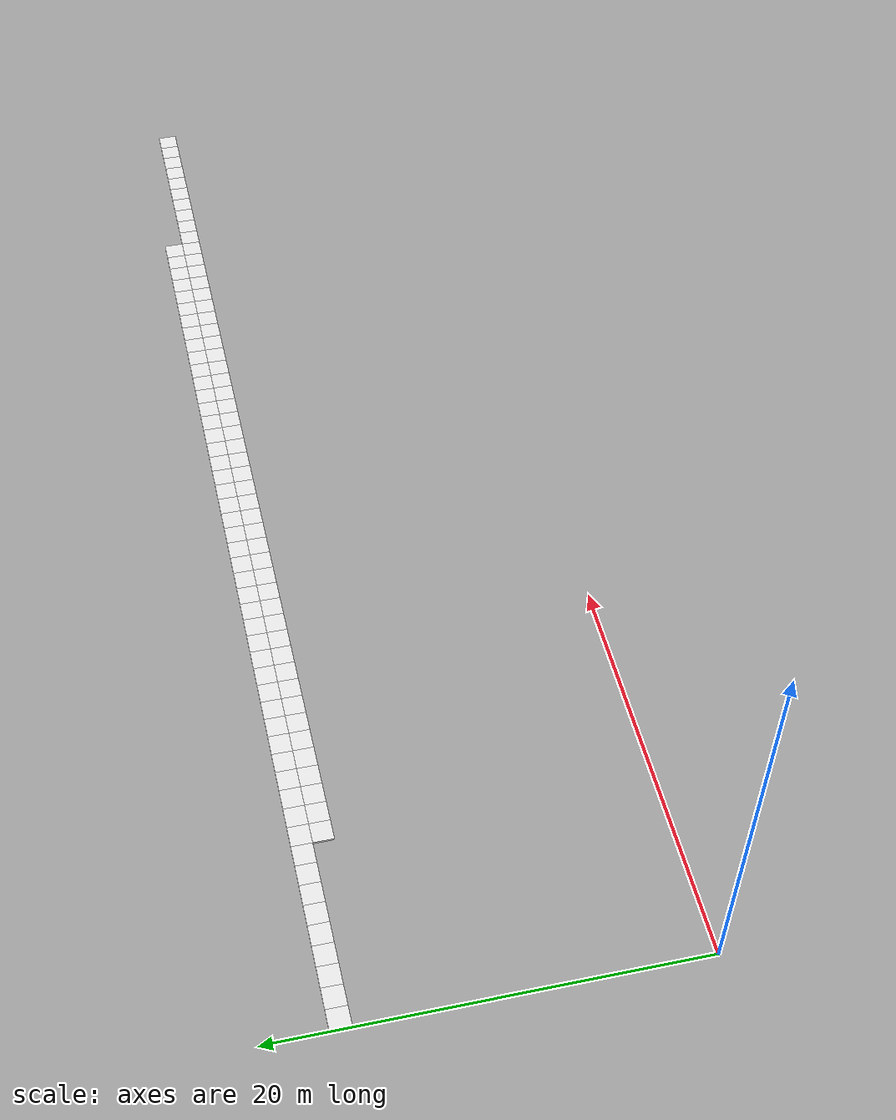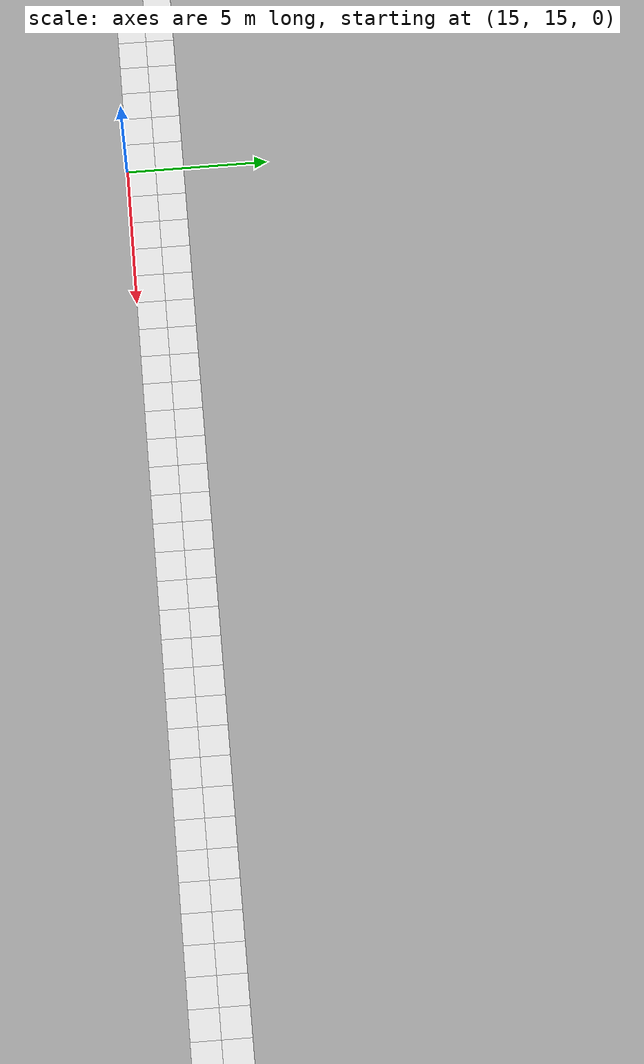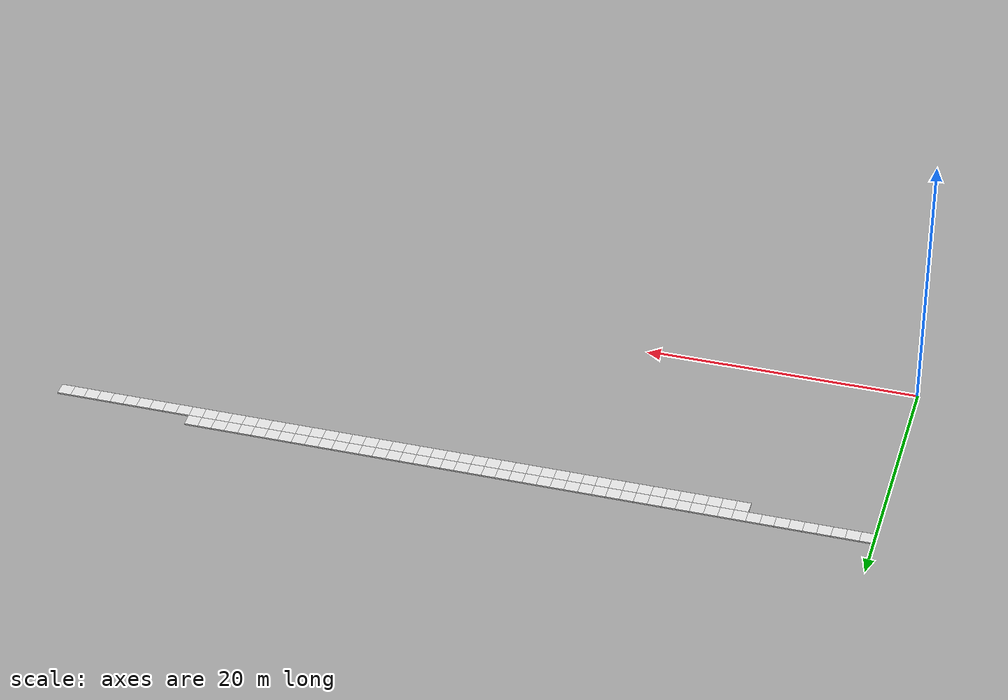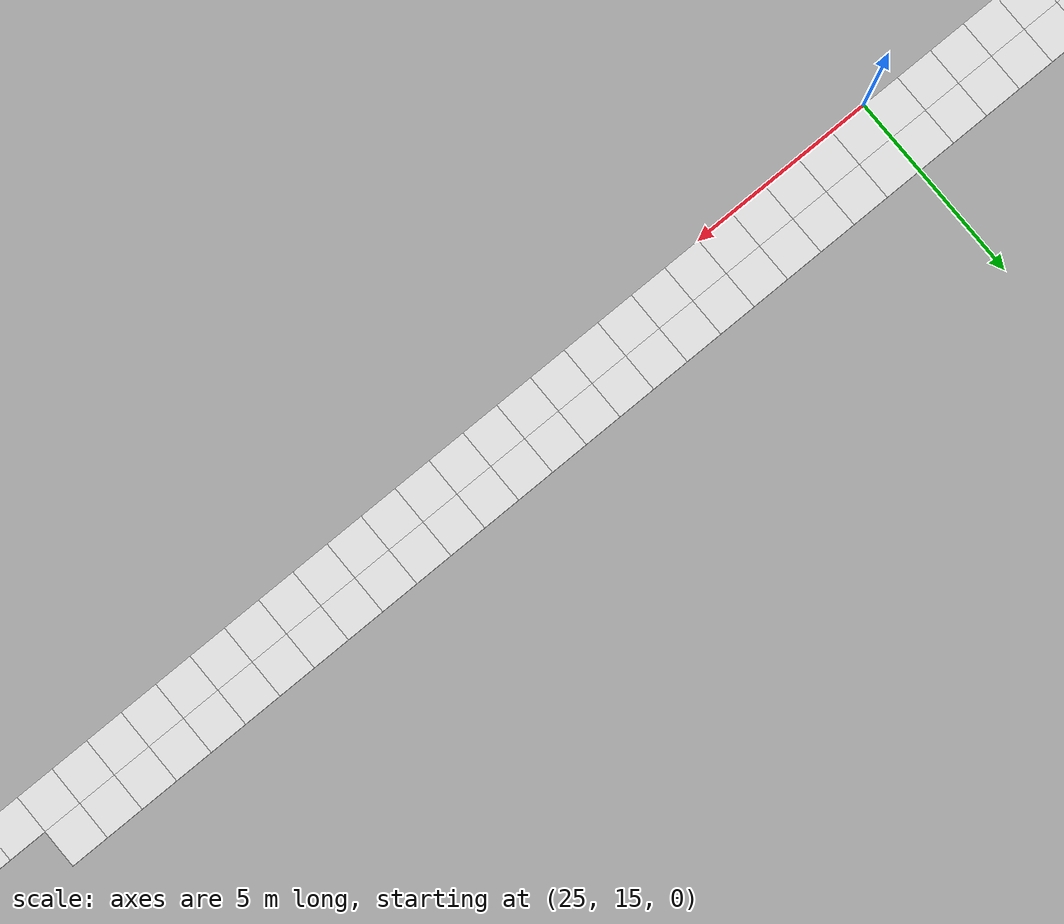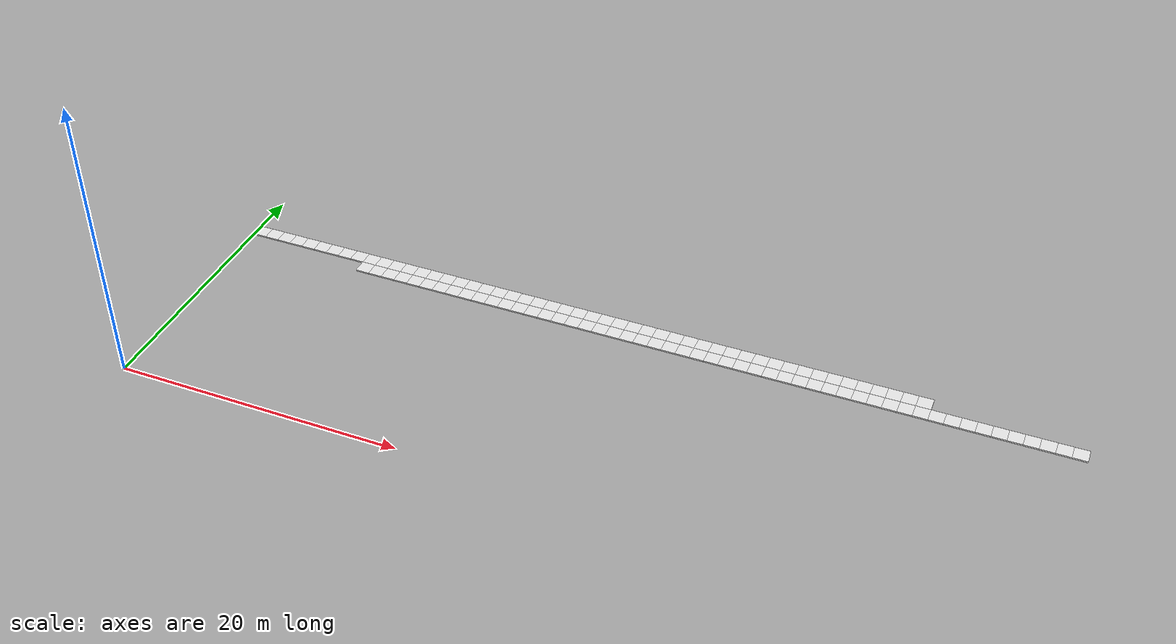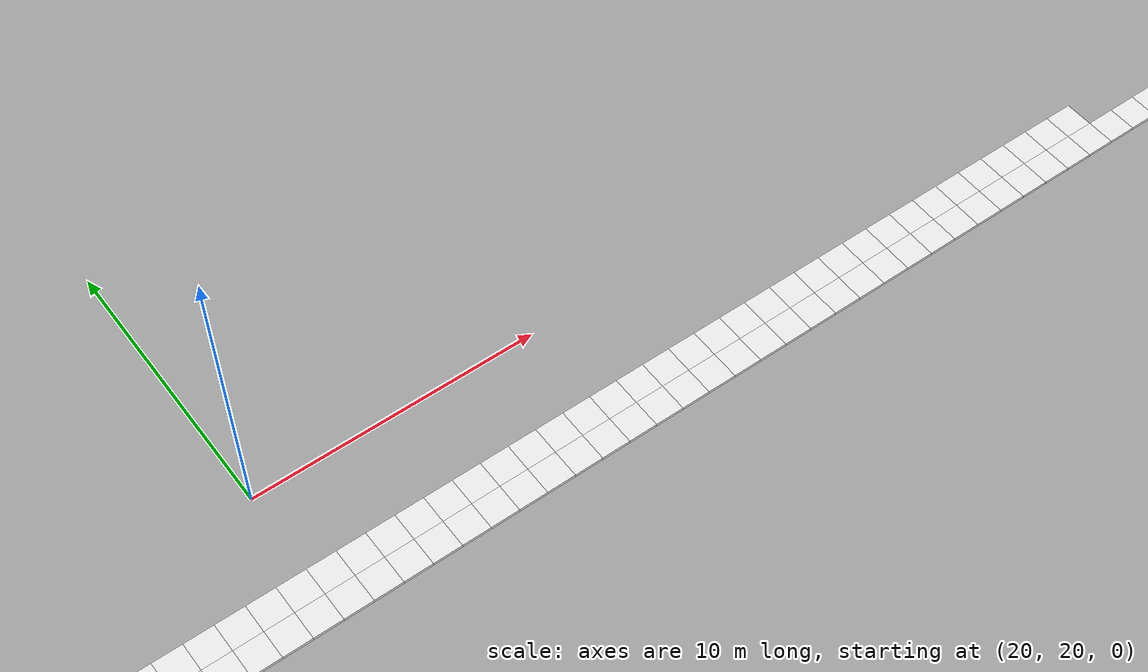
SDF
<sdf version="1.6">
 <world name="grid_world">
  <model name="cell_9_15">
   <static>true</static>
   <link name="link">
    <collision name="collision"><geometry><box><size>1 1 0.1</size></box></geometry></collision>
    <visual name="visual">
     <geometry><box><size>1 1 0.1</size></box></geometry>
     <material>
      <script><uri>file://media/materials/scripts/gazebo.material</uri><name>Gazebo/White</name></script>
     </material>
    </visual>
    <pose>9.5 15.5 0.05 0 0 0</pose>
   </link>
  </model>
  <model name="cell_10_15">
   <static>true</static>
   <link name="link">
    <collision name="collision"><geometry><box><size>1 1 0.1</size></box></geometry></collision>
    <visual name="visual">
     <geometry><box><size>1 1 0.1</size></box></geometry>
     <material>
      <script><uri>file://media/materials/scripts/gazebo.material</uri><name>Gazebo/White</name></script>
     </material>
    </visual>
    <pose>10.5 15.5 0.05 0 0 0</pose>
   </link>
  </model>
  <model name="cell_11_15">
   <static>true</static>
   <link name="link">
    <collision name="collision"><geometry><box><size>1 1 0.1</size></box></geometry></collision>
    <visual name="visual">
     <geometry><box><size>1 1 0.1</size></box></geometry>
     <material>
      <script><uri>file://media/materials/scripts/gazebo.material</uri><name>Gazebo/White</name></script>
     </material>
    </visual>
    <pose>11.5 15.5 0.05 0 0 0</pose>
   </link>
  </model>
  <model name="cell_12_15">
   <static>true</static>
   <link name="link">
    <collision name="collision"><geometry><box><size>1 1 0.1</size></box></geometry></collision>
    <visual name="visual">
     <geometry><box><size>1 1 0.1</size></box></geometry>
     <material>
      <script><uri>file://media/materials/scripts/gazebo.material</uri><name>Gazebo/White</name></script>
     </material>
    </visual>
    <pose>12.5 15.5 0.05 0 0 0</pose>
   </link>
  </model>
  <model name="cell_13_15">
   <static>true</static>
   <link name="link">
    <collision name="collision"><geometry><box><size>1 1 0.1</size></box></geometry></collision>
    <visual name="visual">
     <geometry><box><size>1 1 0.1</size></box></geometry>
     <material>
      <script><uri>file://media/materials/scripts/gazebo.material</uri><name>Gazebo/White</name></script>
     </material>
    </visual>
    <pose>13.5 15.5 0.05 0 0 0</pose>
   </link>
  </model>
  <model name="cell_14_15">
   <static>true</static>
   <link name="link">
    <collision name="collision"><geometry><box><size>1 1 0.1</size></box></geometry></collision>
    <visual name="visual">
     <geometry><box><size>1 1 0.1</size></box></geometry>
     <material>
      <script><uri>file://media/materials/scripts/gazebo.material</uri><name>Gazebo/White</name></script>
     </material>
    </visual>
    <pose>14.5 15.5 0.05 0 0 0</pose>
   </link>
  </model>
  <model name="cell_15_15">
   <static>true</static>
   <link name="link">
    <collision name="collision"><geometry><box><size>1 1 0.1</size></box></geometry></collision>
    <visual name="visual">
     <geometry><box><size>1 1 0.1</size></box></geometry>
     <material>
      <script><uri>file://media/materials/scripts/gazebo.material</uri><name>Gazebo/White</name></script>
     </material>
    </visual>
    <pose>15.5 15.5 0.05 0 0 0</pose>
   </link>
  </model>
  <model name="cell_16_15">
   <static>true</static>
   <link name="link">
    <collision name="collision"><geometry><box><size>1 1 0.1</size></box></geometry></collision>
    <visual name="visual">
     <geometry><box><size>1 1 0.1</size></box></geometry>
     <material>
      <script><uri>file://media/materials/scripts/gazebo.material</uri><name>Gazebo/White</name></script>
     </material>
    </visual>
    <pose>16.5 15.5 0.05 0 0 0</pose>
   </link>
  </model>
  <model name="cell_17_15">
   <static>true</static>
   <link name="link">
    <collision name="collision"><geometry><box><size>1 1 0.1</size></box></geometry></collision>
    <visual name="visual">
     <geometry><box><size>1 1 0.1</size></box></geometry>
     <material>
      <script><uri>file://media/materials/scripts/gazebo.material</uri><name>Gazebo/White</name></script>
     </material>
    </visual>
    <pose>17.5 15.5 0.05 0 0 0</pose>
   </link>
  </model>
  <model name="cell_18_15">
   <static>true</static>
   <link name="link">
    <collision name="collision"><geometry><box><size>1 1 0.1</size></box></geometry></collision>
    <visual name="visual">
     <geometry><box><size>1 1 0.1</size></box></geometry>
     <material>
      <script><uri>file://media/materials/scripts/gazebo.material</uri><name>Gazebo/White</name></script>
     </material>
    </visual>
    <pose>18.5 15.5 0.05 0 0 0</pose>
   </link>
  </model>
  <model name="cell_19_15">
   <static>true</static>
   <link name="link">
    <collision name="collision"><geometry><box><size>1 1 0.1</size></box></geometry></collision>
    <visual name="visual">
     <geometry><box><size>1 1 0.1</size></box></geometry>
     <material>
      <script><uri>file://media/materials/scripts/gazebo.material</uri><name>Gazebo/White</name></script>
     </material>
    </visual>
    <pose>19.5 15.5 0.05 0 0 0</pose>
   </link>
  </model>
  <model name="cell_20_15">
   <static>true</static>
   <link name="link">
    <collision name="collision"><geometry><box><size>1 1 0.1</size></box></geometry></collision>
    <visual name="visual">
     <geometry><box><size>1 1 0.1</size></box></geometry>
     <material>
      <script><uri>file://media/materials/scripts/gazebo.material</uri><name>Gazebo/White</name></script>
     </material>
    </visual>
    <pose>20.5 15.5 0.05 0 0 0</pose>
   </link>
  </model>
  <model name="cell_21_15">
   <static>true</static>
   <link name="link">
    <collision name="collision"><geometry><box><size>1 1 0.1</size></box></geometry></collision>
    <visual name="visual">
     <geometry><box><size>1 1 0.1</size></box></geometry>
     <material>
      <script><uri>file://media/materials/scripts/gazebo.material</uri><name>Gazebo/White</name></script>
     </material>
    </visual>
    <pose>21.5 15.5 0.05 0 0 0</pose>
   </link>
  </model>
  <model name="cell_22_15">
   <static>true</static>
   <link name="link">
    <collision name="collision"><geometry><box><size>1 1 0.1</size></box></geometry></collision>
    <visual name="visual">
     <geometry><box><size>1 1 0.1</size></box></geometry>
     <material>
      <script><uri>file://media/materials/scripts/gazebo.material</uri><name>Gazebo/White</name></script>
     </material>
    </visual>
    <pose>22.5 15.5 0.05 0 0 0</pose>
   </link>
  </model>
  <model name="cell_23_15">
   <static>true</static>
   <link name="link">
    <collision name="collision"><geometry><box><size>1 1 0.1</size></box></geometry></collision>
    <visual name="visual">
     <geometry><box><size>1 1 0.1</size></box></geometry>
     <material>
      <script><uri>file://media/materials/scripts/gazebo.material</uri><name>Gazebo/White</name></script>
     </material>
    </visual>
    <pose>23.5 15.5 0.05 0 0 0</pose>
   </link>
  </model>
  <model name="cell_24_15">
   <static>true</static>
   <link name="link">
    <collision name="collision"><geometry><box><size>1 1 0.1</size></box></geometry></collision>
    <visual name="visual">
     <geometry><box><size>1 1 0.1</size></box></geometry>
     <material>
      <script><uri>file://media/materials/scripts/gazebo.material</uri><name>Gazebo/White</name></script>
     </material>
    </visual>
    <pose>24.5 15.5 0.05 0 0 0</pose>
   </link>
  </model>
  <model name="cell_25_15">
   <static>true</static>
   <link name="link">
    <collision name="collision"><geometry><box><size>1 1 0.1</size></box></geometry></collision>
    <visual name="visual">
     <geometry><box><size>1 1 0.1</size></box></geometry>
     <material>
      <script><uri>file://media/materials/scripts/gazebo.material</uri><name>Gazebo/White</name></script>
     </material>
    </visual>
    <pose>25.5 15.5 0.05 0 0 0</pose>
   </link>
  </model>
  <model name="cell_26_15">
   <static>true</static>
   <link name="link">
    <collision name="collision"><geometry><box><size>1 1 0.1</size></box></geometry></collision>
    <visual name="visual">
     <geometry><box><size>1 1 0.1</size></box></geometry>
     <material>
      <script><uri>file://media/materials/scripts/gazebo.material</uri><name>Gazebo/White</name></script>
     </material>
    </visual>
    <pose>26.5 15.5 0.05 0 0 0</pose>
   </link>
  </model>
  <model name="cell_27_15">
   <static>true</static>
   <link name="link">
    <collision name="collision"><geometry><box><size>1 1 0.1</size></box></geometry></collision>
    <visual name="visual">
     <geometry><box><size>1 1 0.1</size></box></geometry>
     <material>
      <script><uri>file://media/materials/scripts/gazebo.material</uri><name>Gazebo/White</name></script>
     </material>
    </visual>
    <pose>27.5 15.5 0.05 0 0 0</pose>
   </link>
  </model>
  <model name="cell_28_15">
   <static>true</static>
   <link name="link">
    <collision name="collision"><geometry><box><size>1 1 0.1</size></box></geometry></collision>
    <visual name="visual">
     <geometry><box><size>1 1 0.1</size></box></geometry>
     <material>
      <script><uri>file://media/materials/scripts/gazebo.material</uri><name>Gazebo/White</name></script>
     </material>
    </visual>
    <pose>28.5 15.5 0.05 0 0 0</pose>
   </link>
  </model>
  <model name="cell_29_15">
   <static>true</static>
   <link name="link">
    <collision name="collision"><geometry><box><size>1 1 0.1</size></box></geometry></collision>
    <visual name="visual">
     <geometry><box><size>1 1 0.1</size></box></geometry>
     <material>
      <script><uri>file://media/materials/scripts/gazebo.material</uri><name>Gazebo/White</name></script>
     </material>
    </visual>
    <pose>29.5 15.5 0.05 0 0 0</pose>
   </link>
  </model>
  <model name="cell_30_15">
   <static>true</static>
   <link name="link">
    <collision name="collision"><geometry><box><size>1 1 0.1</size></box></geometry></collision>
    <visual name="visual">
     <geometry><box><size>1 1 0.1</size></box></geometry>
     <material>
      <script><uri>file://media/materials/scripts/gazebo.material</uri><name>Gazebo/White</name></script>
     </material>
    </visual>
    <pose>30.5 15.5 0.05 0 0 0</pose>
   </link>
  </model>
  <model name="cell_31_15">
   <static>true</static>
   <link name="link">
    <collision name="collision"><geometry><box><size>1 1 0.1</size></box></geometry></collision>
    <visual name="visual">
     <geometry><box><size>1 1 0.1</size></box></geometry>
     <material>
      <script><uri>file://media/materials/scripts/gazebo.material</uri><name>Gazebo/White</name></script>
     </material>
    </visual>
    <pose>31.5 15.5 0.05 0 0 0</pose>
   </link>
  </model>
  <model name="cell_32_15">
   <static>true</static>
   <link name="link">
    <collision name="collision"><geometry><box><size>1 1 0.1</size></box></geometry></collision>
    <visual name="visual">
     <geometry><box><size>1 1 0.1</size></box></geometry>
     <material>
      <script><uri>file://media/materials/scripts/gazebo.material</uri><name>Gazebo/White</name></script>
     </material>
    </visual>
    <pose>32.5 15.5 0.05 0 0 0</pose>
   </link>
  </model>
  <model name="cell_33_15">
   <static>true</static>
   <link name="link">
    <collision name="collision"><geometry><box><size>1 1 0.1</size></box></geometry></collision>
    <visual name="visual">
     <geometry><box><size>1 1 0.1</size></box></geometry>
     <material>
      <script><uri>file://media/materials/scripts/gazebo.material</uri><name>Gazebo/White</name></script>
     </material>
    </visual>
    <pose>33.5 15.5 0.05 0 0 0</pose>
   </link>
  </model>
  <model name="cell_34_15">
   <static>true</static>
   <link name="link">
    <collision name="collision"><geometry><box><size>1 1 0.1</size></box></geometry></collision>
    <visual name="visual">
     <geometry><box><size>1 1 0.1</size></box></geometry>
     <material>
      <script><uri>file://media/materials/scripts/gazebo.material</uri><name>Gazebo/White</name></script>
     </material>
    </visual>
    <pose>34.5 15.5 0.05 0 0 0</pose>
   </link>
  </model>
  <model name="cell_35_15">
   <static>true</static>
   <link name="link">
    <collision name="collision"><geometry><box><size>1 1 0.1</size></box></geometry></collision>
    <visual name="visual">
     <geometry><box><size>1 1 0.1</size></box></geometry>
     <material>
      <script><uri>file://media/materials/scripts/gazebo.material</uri><name>Gazebo/White</name></script>
     </material>
    </visual>
    <pose>35.5 15.5 0.05 0 0 0</pose>
   </link>
  </model>
  <model name="cell_36_15">
   <static>true</static>
   <link name="link">
    <collision name="collision"><geometry><box><size>1 1 0.1</size></box></geometry></collision>
    <visual name="visual">
     <geometry><box><size>1 1 0.1</size></box></geometry>
     <material>
      <script><uri>file://media/materials/scripts/gazebo.material</uri><name>Gazebo/White</name></script>
     </material>
    </visual>
    <pose>36.5 15.5 0.05 0 0 0</pose>
   </link>
  </model>
  <model name="cell_37_15">
   <static>true</static>
   <link name="link">
    <collision name="collision"><geometry><box><size>1 1 0.1</size></box></geometry></collision>
    <visual name="visual">
     <geometry><box><size>1 1 0.1</size></box></geometry>
     <material>
      <script><uri>file://media/materials/scripts/gazebo.material</uri><name>Gazebo/White</name></script>
     </material>
    </visual>
    <pose>37.5 15.5 0.05 0 0 0</pose>
   </link>
  </model>
  <model name="cell_38_15">
   <static>true</static>
   <link name="link">
    <collision name="collision"><geometry><box><size>1 1 0.1</size></box></geometry></collision>
    <visual name="visual">
     <geometry><box><size>1 1 0.1</size></box></geometry>
     <material>
      <script><uri>file://media/materials/scripts/gazebo.material</uri><name>Gazebo/White</name></script>
     </material>
    </visual>
    <pose>38.5 15.5 0.05 0 0 0</pose>
   </link>
  </model>
  <model name="cell_39_15">
   <static>true</static>
   <link name="link">
    <collision name="collision"><geometry><box><size>1 1 0.1</size></box></geometry></collision>
    <visual name="visual">
     <geometry><box><size>1 1 0.1</size></box></geometry>
     <material>
      <script><uri>file://media/materials/scripts/gazebo.material</uri><name>Gazebo/White</name></script>
     </material>
    </visual>
    <pose>39.5 15.5 0.05 0 0 0</pose>
   </link>
  </model>
  <model name="cell_40_15">
   <static>true</static>
   <link name="link">
    <collision name="collision"><geometry><box><size>1 1 0.1</size></box></geometry></collision>
    <visual name="visual">
     <geometry><box><size>1 1 0.1</size></box></geometry>
     <material>
      <script><uri>file://media/materials/scripts/gazebo.material</uri><name>Gazebo/White</name></script>
     </material>
    </visual>
    <pose>40.5 15.5 0.05 0 0 0</pose>
   </link>
  </model>
  <model name="cell_41_15">
   <static>true</static>
   <link name="link">
    <collision name="collision"><geometry><box><size>1 1 0.1</size></box></geometry></collision>
    <visual name="visual">
     <geometry><box><size>1 1 0.1</size></box></geometry>
     <material>
      <script><uri>file://media/materials/scripts/gazebo.material</uri><name>Gazebo/White</name></script>
     </material>
    </visual>
    <pose>41.5 15.5 0.05 0 0 0</pose>
   </link>
  </model>
  <model name="cell_42_15">
   <static>true</static>
   <link name="link">
    <collision name="collision"><geometry><box><size>1 1 0.1</size></box></geometry></collision>
    <visual name="visual">
     <geometry><box><size>1 1 0.1</size></box></geometry>
     <material>
      <script><uri>file://media/materials/scripts/gazebo.material</uri><name>Gazebo/White</name></script>
     </material>
    </visual>
    <pose>42.5 15.5 0.05 0 0 0</pose>
   </link>
  </model>
  <model name="cell_43_15">
   <static>true</static>
   <link name="link">
    <collision name="collision"><geometry><box><size>1 1 0.1</size></box></geometry></collision>
    <visual name="visual">
     <geometry><box><size>1 1 0.1</size></box></geometry>
     <material>
      <script><uri>file://media/materials/scripts/gazebo.material</uri><name>Gazebo/White</name></script>
     </material>
    </visual>
    <pose>43.5 15.5 0.05 0 0 0</pose>
   </link>
  </model>
  <model name="cell_44_15">
   <static>true</static>
   <link name="link">
    <collision name="collision"><geometry><box><size>1 1 0.1</size></box></geometry></collision>
    <visual name="visual">
     <geometry><box><size>1 1 0.1</size></box></geometry>
     <material>
      <script><uri>file://media/materials/scripts/gazebo.material</uri><name>Gazebo/White</name></script>
     </material>
    </visual>
    <pose>44.5 15.5 0.05 0 0 0</pose>
   </link>
  </model>
  <model name="cell_45_15">
   <static>true</static>
   <link name="link">
    <collision name="collision"><geometry><box><size>1 1 0.1</size></box></geometry></collision>
    <visual name="visual">
     <geometry><box><size>1 1 0.1</size></box></geometry>
     <material>
      <script><uri>file://media/materials/scripts/gazebo.material</uri><name>Gazebo/White</name></script>
     </material>
    </visual>
    <pose>45.5 15.5 0.05 0 0 0</pose>
   </link>
  </model>
  <model name="cell_46_15">
   <static>true</static>
   <link name="link">
    <collision name="collision"><geometry><box><size>1 1 0.1</size></box></geometry></collision>
    <visual name="visual">
     <geometry><box><size>1 1 0.1</size></box></geometry>
     <material>
      <script><uri>file://media/materials/scripts/gazebo.material</uri><name>Gazebo/White</name></script>
     </material>
    </visual>
    <pose>46.5 15.5 0.05 0 0 0</pose>
   </link>
  </model>
  <model name="cell_47_15">
   <static>true</static>
   <link name="link">
    <collision name="collision"><geometry><box><size>1 1 0.1</size></box></geometry></collision>
    <visual name="visual">
     <geometry><box><size>1 1 0.1</size></box></geometry>
     <material>
      <script><uri>file://media/materials/scripts/gazebo.material</uri><name>Gazebo/White</name></script>
     </material>
    </visual>
    <pose>47.5 15.5 0.05 0 0 0</pose>
   </link>
  </model>
  <model name="cell_48_15">
   <static>true</static>
   <link name="link">
    <collision name="collision"><geometry><box><size>1 1 0.1</size></box></geometry></collision>
    <visual name="visual">
     <geometry><box><size>1 1 0.1</size></box></geometry>
     <material>
      <script><uri>file://media/materials/scripts/gazebo.material</uri><name>Gazebo/White</name></script>
     </material>
    </visual>
    <pose>48.5 15.5 0.05 0 0 0</pose>
   </link>
  </model>
  <model name="cell_49_15">
   <static>true</static>
   <link name="link">
    <collision name="collision"><geometry><box><size>1 1 0.1</size></box></geometry></collision>
    <visual name="visual">
     <geometry><box><size>1 1 0.1</size></box></geometry>
     <material>
      <script><uri>file://media/materials/scripts/gazebo.material</uri><name>Gazebo/White</name></script>
     </material>
    </visual>
    <pose>49.5 15.5 0.05 0 0 0</pose>
   </link>
  </model>
  <model name="cell_50_15">
   <static>true</static>
   <link name="link">
    <collision name="collision"><geometry><box><size>1 1 0.1</size></box></geometry></collision>
    <visual name="visual">
     <geometry><box><size>1 1 0.1</size></box></geometry>
     <material>
      <script><uri>file://media/materials/scripts/gazebo.material</uri><name>Gazebo/White</name></script>
     </material>
    </visual>
    <pose>50.5 15.5 0.05 0 0 0</pose>
   </link>
  </model>
  <model name="cell_51_15">
   <static>true</static>
   <link name="link">
    <collision name="collision"><geometry><box><size>1 1 0.1</size></box></geometry></collision>
    <visual name="visual">
     <geometry><box><size>1 1 0.1</size></box></geometry>
     <material>
      <script><uri>file://media/materials/scripts/gazebo.material</uri><name>Gazebo/White</name></script>
     </material>
    </visual>
    <pose>51.5 15.5 0.05 0 0 0</pose>
   </link>
  </model>
  <model name="cell_52_15">
   <static>true</static>
   <link name="link">
    <collision name="collision"><geometry><box><size>1 1 0.1</size></box></geometry></collision>
    <visual name="visual">
     <geometry><box><size>1 1 0.1</size></box></geometry>
     <material>
      <script><uri>file://media/materials/scripts/gazebo.material</uri><name>Gazebo/White</name></script>
     </material>
    </visual>
    <pose>52.5 15.5 0.05 0 0 0</pose>
   </link>
  </model>
  <model name="cell_53_15">
   <static>true</static>
   <link name="link">
    <collision name="collision"><geometry><box><size>1 1 0.1</size></box></geometry></collision>
    <visual name="visual">
     <geometry><box><size>1 1 0.1</size></box></geometry>
     <material>
      <script><uri>file://media/materials/scripts/gazebo.material</uri><name>Gazebo/White</name></script>
     </material>
    </visual>
    <pose>53.5 15.5 0.05 0 0 0</pose>
   </link>
  </model>
  <model name="cell_54_15">
   <static>true</static>
   <link name="link">
    <collision name="collision"><geometry><box><size>1 1 0.1</size></box></geometry></collision>
    <visual name="visual">
     <geometry><box><size>1 1 0.1</size></box></geometry>
     <material>
      <script><uri>file://media/materials/scripts/gazebo.material</uri><name>Gazebo/White</name></script>
     </material>
    </visual>
    <pose>54.5 15.5 0.05 0 0 0</pose>
   </link>
  </model>
  <model name="cell_55_15">
   <static>true</static>
   <link name="link">
    <collision name="collision"><geometry><box><size>1 1 0.1</size></box></geometry></collision>
    <visual name="visual">
     <geometry><box><size>1 1 0.1</size></box></geometry>
     <material>
      <script><uri>file://media/materials/scripts/gazebo.material</uri><name>Gazebo/White</name></script>
     </material>
    </visual>
    <pose>55.5 15.5 0.05 0 0 0</pose>
   </link>
  </model>
  <model name="cell_56_15">
   <static>true</static>
   <link name="link">
    <collision name="collision"><geometry><box><size>1 1 0.1</size></box></geometry></collision>
    <visual name="visual">
     <geometry><box><size>1 1 0.1</size></box></geometry>
     <material>
      <script><uri>file://media/materials/scripts/gazebo.material</uri><name>Gazebo/White</name></script>
     </material>
    </visual>
    <pose>56.5 15.5 0.05 0 0 0</pose>
   </link>
  </model>
  <model name="cell_57_15">
   <static>true</static>
   <link name="link">
    <collision name="collision"><geometry><box><size>1 1 0.1</size></box></geometry></collision>
    <visual name="visual">
     <geometry><box><size>1 1 0.1</size></box></geometry>
     <material>
      <script><uri>file://media/materials/scripts/gazebo.material</uri><name>Gazebo/White</name></script>
     </material>
    </visual>
    <pose>57.5 15.5 0.05 0 0 0</pose>
   </link>
  </model>
  <model name="cell_58_15">
   <static>true</static>
   <link name="link">
    <collision name="collision"><geometry><box><size>1 1 0.1</size></box></geometry></collision>
    <visual name="visual">
     <geometry><box><size>1 1 0.1</size></box></geometry>
     <material>
      <script><uri>file://media/materials/scripts/gazebo.material</uri><name>Gazebo/White</name></script>
     </material>
    </visual>
    <pose>58.5 15.5 0.05 0 0 0</pose>
   </link>
  </model>
  <model name="cell_59_15">
   <static>true</static>
   <link name="link">
    <collision name="collision"><geometry><box><size>1 1 0.1</size></box></geometry></collision>
    <visual name="visual">
     <geometry><box><size>1 1 0.1</size></box></geometry>
     <material>
      <script><uri>file://media/materials/scripts/gazebo.material</uri><name>Gazebo/White</name></script>
     </material>
    </visual>
    <pose>59.5 15.5 0.05 0 0 0</pose>
   </link>
  </model>
  <model name="cell_0_16">
   <static>true</static>
   <link name="link">
    <collision name="collision"><geometry><box><size>1 1 0.1</size></box></geometry></collision>
    <visual name="visual">
     <geometry><box><size>1 1 0.1</size></box></geometry>
     <material>
      <script><uri>file://media/materials/scripts/gazebo.material</uri><name>Gazebo/White</name></script>
     </material>
    </visual>
    <pose>0.5 16.5 0.05 0 0 0</pose>
   </link>
  </model>
  <model name="cell_1_16">
   <static>true</static>
   <link name="link">
    <collision name="collision"><geometry><box><size>1 1 0.1</size></box></geometry></collision>
    <visual name="visual">
     <geometry><box><size>1 1 0.1</size></box></geometry>
     <material>
      <script><uri>file://media/materials/scripts/gazebo.material</uri><name>Gazebo/White</name></script>
     </material>
    </visual>
    <pose>1.5 16.5 0.05 0 0 0</pose>
   </link>
  </model>
  <model name="cell_2_16">
   <static>true</static>
   <link name="link">
    <collision name="collision"><geometry><box><size>1 1 0.1</size></box></geometry></collision>
    <visual name="visual">
     <geometry><box><size>1 1 0.1</size></box></geometry>
     <material>
      <script><uri>file://media/materials/scripts/gazebo.material</uri><name>Gazebo/White</name></script>
     </material>
    </visual>
    <pose>2.5 16.5 0.05 0 0 0</pose>
   </link>
  </model>
  <model name="cell_3_16">
   <static>true</static>
   <link name="link">
    <collision name="collision"><geometry><box><size>1 1 0.1</size></box></geometry></collision>
    <visual name="visual">
     <geometry><box><size>1 1 0.1</size></box></geometry>
     <material>
      <script><uri>file://media/materials/scripts/gazebo.material</uri><name>Gazebo/White</name></script>
     </material>
    </visual>
    <pose>3.5 16.5 0.05 0 0 0</pose>
   </link>
  </model>
  <model name="cell_4_16">
   <static>true</static>
   <link name="link">
    <collision name="collision"><geometry><box><size>1 1 0.1</size></box></geometry></collision>
    <visual name="visual">
     <geometry><box><size>1 1 0.1</size></box></geometry>
     <material>
      <script><uri>file://media/materials/scripts/gazebo.material</uri><name>Gazebo/White</name></script>
     </material>
    </visual>
    <pose>4.5 16.5 0.05 0 0 0</pose>
   </link>
  </model>
  <model name="cell_5_16">
   <static>true</static>
   <link name="link">
    <collision name="collision"><geometry><box><size>1 1 0.1</size></box></geometry></collision>
    <visual name="visual">
     <geometry><box><size>1 1 0.1</size></box></geometry>
     <material>
      <script><uri>file://media/materials/scripts/gazebo.material</uri><name>Gazebo/White</name></script>
     </material>
    </visual>
    <pose>5.5 16.5 0.05 0 0 0</pose>
   </link>
  </model>
  <model name="cell_6_16">
   <static>true</static>
   <link name="link">
    <collision name="collision"><geometry><box><size>1 1 0.1</size></box></geometry></collision>
    <visual name="visual">
     <geometry><box><size>1 1 0.1</size></box></geometry>
     <material>
      <script><uri>file://media/materials/scripts/gazebo.material</uri><name>Gazebo/White</name></script>
     </material>
    </visual>
    <pose>6.5 16.5 0.05 0 0 0</pose>
   </link>
  </model>
  <model name="cell_7_16">
   <static>true</static>
   <link name="link">
    <collision name="collision"><geometry><box><size>1 1 0.1</size></box></geometry></collision>
    <visual name="visual">
     <geometry><box><size>1 1 0.1</size></box></geometry>
     <material>
      <script><uri>file://media/materials/scripts/gazebo.material</uri><name>Gazebo/White</name></script>
     </material>
    </visual>
    <pose>7.5 16.5 0.05 0 0 0</pose>
   </link>
  </model>
  <model name="cell_8_16">
   <static>true</static>
   <link name="link">
    <collision name="collision"><geometry><box><size>1 1 0.1</size></box></geometry></collision>
    <visual name="visual">
     <geometry><box><size>1 1 0.1</size></box></geometry>
     <material>
      <script><uri>file://media/materials/scripts/gazebo.material</uri><name>Gazebo/White</name></script>
     </material>
    </visual>
    <pose>8.5 16.5 0.05 0 0 0</pose>
   </link>
  </model>
  <model name="cell_9_16">
   <static>true</static>
   <link name="link">
    <collision name="collision"><geometry><box><size>1 1 0.1</size></box></geometry></collision>
    <visual name="visual">
     <geometry><box><size>1 1 0.1</size></box></geometry>
     <material>
      <script><uri>file://media/materials/scripts/gazebo.material</uri><name>Gazebo/White</name></script>
     </material>
    </visual>
    <pose>9.5 16.5 0.05 0 0 0</pose>
   </link>
  </model>
  <model name="cell_10_16">
   <static>true</static>
   <link name="link">
    <collision name="collision"><geometry><box><size>1 1 0.1</size></box></geometry></collision>
    <visual name="visual">
     <geometry><box><size>1 1 0.1</size></box></geometry>
     <material>
      <script><uri>file://media/materials/scripts/gazebo.material</uri><name>Gazebo/White</name></script>
     </material>
    </visual>
    <pose>10.5 16.5 0.05 0 0 0</pose>
   </link>
  </model>
  <model name="cell_11_16">
   <static>true</static>
   <link name="link">
    <collision name="collision"><geometry><box><size>1 1 0.1</size></box></geometry></collision>
    <visual name="visual">
     <geometry><box><size>1 1 0.1</size></box></geometry>
     <material>
      <script><uri>file://media/materials/scripts/gazebo.material</uri><name>Gazebo/White</name></script>
     </material>
    </visual>
    <pose>11.5 16.5 0.05 0 0 0</pose>
   </link>
  </model>
  <model name="cell_12_16">
   <static>true</static>
   <link name="link">
    <collision name="collision"><geometry><box><size>1 1 0.1</size></box></geometry></collision>
    <visual name="visual">
     <geometry><box><size>1 1 0.1</size></box></geometry>
     <material>
      <script><uri>file://media/materials/scripts/gazebo.material</uri><name>Gazebo/White</name></script>
     </material>
    </visual>
    <pose>12.5 16.5 0.05 0 0 0</pose>
   </link>
  </model>
  <model name="cell_13_16">
   <static>true</static>
   <link name="link">
    <collision name="collision"><geometry><box><size>1 1 0.1</size></box></geometry></collision>
    <visual name="visual">
     <geometry><box><size>1 1 0.1</size></box></geometry>
     <material>
      <script><uri>file://media/materials/scripts/gazebo.material</uri><name>Gazebo/White</name></script>
     </material>
    </visual>
    <pose>13.5 16.5 0.05 0 0 0</pose>
   </link>
  </model>
  <model name="cell_14_16">
   <static>true</static>
   <link name="link">
    <collision name="collision"><geometry><box><size>1 1 0.1</size></box></geometry></collision>
    <visual name="visual">
     <geometry><box><size>1 1 0.1</size></box></geometry>
     <material>
      <script><uri>file://media/materials/scripts/gazebo.material</uri><name>Gazebo/White</name></script>
     </material>
    </visual>
    <pose>14.5 16.5 0.05 0 0 0</pose>
   </link>
  </model>
  <model name="cell_15_16">
   <static>true</static>
   <link name="link">
    <collision name="collision"><geometry><box><size>1 1 0.1</size></box></geometry></collision>
    <visual name="visual">
     <geometry><box><size>1 1 0.1</size></box></geometry>
     <material>
      <script><uri>file://media/materials/scripts/gazebo.material</uri><name>Gazebo/White</name></script>
     </material>
    </visual>
    <pose>15.5 16.5 0.05 0 0 0</pose>
   </link>
  </model>
  <model name="cell_16_16">
   <static>true</static>
   <link name="link">
    <collision name="collision"><geometry><box><size>1 1 0.1</size></box></geometry></collision>
    <visual name="visual">
     <geometry><box><size>1 1 0.1</size></box></geometry>
     <material>
      <script><uri>file://media/materials/scripts/gazebo.material</uri><name>Gazebo/White</name></script>
     </material>
    </visual>
    <pose>16.5 16.5 0.05 0 0 0</pose>
   </link>
  </model>
  <model name="cell_17_16">
   <static>true</static>
   <link name="link">
    <collision name="collision"><geometry><box><size>1 1 0.1</size></box></geometry></collision>
    <visual name="visual">
     <geometry><box><size>1 1 0.1</size></box></geometry>
     <material>
      <script><uri>file://media/materials/scripts/gazebo.material</uri><name>Gazebo/White</name></script>
     </material>
    </visual>
    <pose>17.5 16.5 0.05 0 0 0</pose>
   </link>
  </model>
  <model name="cell_18_16">
   <static>true</static>
   <link name="link">
    <collision name="collision"><geometry><box><size>1 1 0.1</size></box></geometry></collision>
    <visual name="visual">
     <geometry><box><size>1 1 0.1</size></box></geometry>
     <material>
      <script><uri>file://media/materials/scripts/gazebo.material</uri><name>Gazebo/White</name></script>
     </material>
    </visual>
    <pose>18.5 16.5 0.05 0 0 0</pose>
   </link>
  </model>
  <model name="cell_19_16">
   <static>true</static>
   <link name="link">
    <collision name="collision"><geometry><box><size>1 1 0.1</size></box></geometry></collision>
    <visual name="visual">
     <geometry><box><size>1 1 0.1</size></box></geometry>
     <material>
      <script><uri>file://media/materials/scripts/gazebo.material</uri><name>Gazebo/White</name></script>
     </material>
    </visual>
    <pose>19.5 16.5 0.05 0 0 0</pose>
   </link>
  </model>
  <model name="cell_20_16">
   <static>true</static>
   <link name="link">
    <collision name="collision"><geometry><box><size>1 1 0.1</size></box></geometry></collision>
    <visual name="visual">
     <geometry><box><size>1 1 0.1</size></box></geometry>
     <material>
      <script><uri>file://media/materials/scripts/gazebo.material</uri><name>Gazebo/White</name></script>
     </material>
    </visual>
    <pose>20.5 16.5 0.05 0 0 0</pose>
   </link>
  </model>
  <model name="cell_21_16">
   <static>true</static>
   <link name="link">
    <collision name="collision"><geometry><box><size>1 1 0.1</size></box></geometry></collision>
    <visual name="visual">
     <geometry><box><size>1 1 0.1</size></box></geometry>
     <material>
      <script><uri>file://media/materials/scripts/gazebo.material</uri><name>Gazebo/White</name></script>
     </material>
    </visual>
    <pose>21.5 16.5 0.05 0 0 0</pose>
   </link>
  </model>
  <model name="cell_22_16">
   <static>true</static>
   <link name="link">
    <collision name="collision"><geometry><box><size>1 1 0.1</size></box></geometry></collision>
    <visual name="visual">
     <geometry><box><size>1 1 0.1</size></box></geometry>
     <material>
      <script><uri>file://media/materials/scripts/gazebo.material</uri><name>Gazebo/White</name></script>
     </material>
    </visual>
    <pose>22.5 16.5 0.05 0 0 0</pose>
   </link>
  </model>
  <model name="cell_23_16">
   <static>true</static>
   <link name="link">
    <collision name="collision"><geometry><box><size>1 1 0.1</size></box></geometry></collision>
    <visual name="visual">
     <geometry><box><size>1 1 0.1</size></box></geometry>
     <material>
      <script><uri>file://media/materials/scripts/gazebo.material</uri><name>Gazebo/White</name></script>
     </material>
    </visual>
    <pose>23.5 16.5 0.05 0 0 0</pose>
   </link>
  </model>
  <model name="cell_24_16">
   <static>true</static>
   <link name="link">
    <collision name="collision"><geometry><box><size>1 1 0.1</size></box></geometry></collision>
    <visual name="visual">
     <geometry><box><size>1 1 0.1</size></box></geometry>
     <material>
      <script><uri>file://media/materials/scripts/gazebo.material</uri><name>Gazebo/White</name></script>
     </material>
    </visual>
    <pose>24.5 16.5 0.05 0 0 0</pose>
   </link>
  </model>
  <model name="cell_25_16">
   <static>true</static>
   <link name="link">
    <collision name="collision"><geometry><box><size>1 1 0.1</size></box></geometry></collision>
    <visual name="visual">
     <geometry><box><size>1 1 0.1</size></box></geometry>
     <material>
      <script><uri>file://media/materials/scripts/gazebo.material</uri><name>Gazebo/White</name></script>
     </material>
    </visual>
    <pose>25.5 16.5 0.05 0 0 0</pose>
   </link>
  </model>
  <model name="cell_26_16">
   <static>true</static>
   <link name="link">
    <collision name="collision"><geometry><box><size>1 1 0.1</size></box></geometry></collision>
    <visual name="visual">
     <geometry><box><size>1 1 0.1</size></box></geometry>
     <material>
      <script><uri>file://media/materials/scripts/gazebo.material</uri><name>Gazebo/White</name></script>
     </material>
    </visual>
    <pose>26.5 16.5 0.05 0 0 0</pose>
   </link>
  </model>
  <model name="cell_27_16">
   <static>true</static>
   <link name="link">
    <collision name="collision"><geometry><box><size>1 1 0.1</size></box></geometry></collision>
    <visual name="visual">
     <geometry><box><size>1 1 0.1</size></box></geometry>
     <material>
      <script><uri>file://media/materials/scripts/gazebo.material</uri><name>Gazebo/White</name></script>
     </material>
    </visual>
    <pose>27.5 16.5 0.05 0 0 0</pose>
   </link>
  </model>
  <model name="cell_28_16">
   <static>true</static>
   <link name="link">
    <collision name="collision"><geometry><box><size>1 1 0.1</size></box></geometry></collision>
    <visual name="visual">
     <geometry><box><size>1 1 0.1</size></box></geometry>
     <material>
      <script><uri>file://media/materials/scripts/gazebo.material</uri><name>Gazebo/White</name></script>
     </material>
    </visual>
    <pose>28.5 16.5 0.05 0 0 0</pose>
   </link>
  </model>
  <model name="cell_29_16">
   <static>true</static>
   <link name="link">
    <collision name="collision"><geometry><box><size>1 1 0.1</size></box></geometry></collision>
    <visual name="visual">
     <geometry><box><size>1 1 0.1</size></box></geometry>
     <material>
      <script><uri>file://media/materials/scripts/gazebo.material</uri><name>Gazebo/White</name></script>
     </material>
    </visual>
    <pose>29.5 16.5 0.05 0 0 0</pose>
   </link>
  </model>
  <model name="cell_30_16">
   <static>true</static>
   <link name="link">
    <collision name="collision"><geometry><box><size>1 1 0.1</size></box></geometry></collision>
    <visual name="visual">
     <geometry><box><size>1 1 0.1</size></box></geometry>
     <material>
      <script><uri>file://media/materials/scripts/gazebo.material</uri><name>Gazebo/White</name></script>
     </material>
    </visual>
    <pose>30.5 16.5 0.05 0 0 0</pose>
   </link>
  </model>
  <model name="cell_31_16">
   <static>true</static>
   <link name="link">
    <collision name="collision"><geometry><box><size>1 1 0.1</size></box></geometry></collision>
    <visual name="visual">
     <geometry><box><size>1 1 0.1</size></box></geometry>
     <material>
      <script><uri>file://media/materials/scripts/gazebo.material</uri><name>Gazebo/White</name></script>
     </material>
    </visual>
    <pose>31.5 16.5 0.05 0 0 0</pose>
   </link>
  </model>
  <model name="cell_32_16">
   <static>true</static>
   <link name="link">
    <collision name="collision"><geometry><box><size>1 1 0.1</size></box></geometry></collision>
    <visual name="visual">
     <geometry><box><size>1 1 0.1</size></box></geometry>
     <material>
      <script><uri>file://media/materials/scripts/gazebo.material</uri><name>Gazebo/White</name></script>
     </material>
    </visual>
    <pose>32.5 16.5 0.05 0 0 0</pose>
   </link>
  </model>
  <model name="cell_33_16">
   <static>true</static>
   <link name="link">
    <collision name="collision"><geometry><box><size>1 1 0.1</size></box></geometry></collision>
    <visual name="visual">
     <geometry><box><size>1 1 0.1</size></box></geometry>
     <material>
      <script><uri>file://media/materials/scripts/gazebo.material</uri><name>Gazebo/White</name></script>
     </material>
    </visual>
    <pose>33.5 16.5 0.05 0 0 0</pose>
   </link>
  </model>
  <model name="cell_34_16">
   <static>true</static>
   <link name="link">
    <collision name="collision"><geometry><box><size>1 1 0.1</size></box></geometry></collision>
    <visual name="visual">
     <geometry><box><size>1 1 0.1</size></box></geometry>
     <material>
      <script><uri>file://media/materials/scripts/gazebo.material</uri><name>Gazebo/White</name></script>
     </material>
    </visual>
    <pose>34.5 16.5 0.05 0 0 0</pose>
   </link>
  </model>
  <model name="cell_35_16">
   <static>true</static>
   <link name="link">
    <collision name="collision"><geometry><box><size>1 1 0.1</size></box></geometry></collision>
    <visual name="visual">
     <geometry><box><size>1 1 0.1</size></box></geometry>
     <material>
      <script><uri>file://media/materials/scripts/gazebo.material</uri><name>Gazebo/White</name></script>
     </material>
    </visual>
    <pose>35.5 16.5 0.05 0 0 0</pose>
   </link>
  </model>
  <model name="cell_36_16">
   <static>true</static>
   <link name="link">
    <collision name="collision"><geometry><box><size>1 1 0.1</size></box></geometry></collision>
    <visual name="visual">
     <geometry><box><size>1 1 0.1</size></box></geometry>
     <material>
      <script><uri>file://media/materials/scripts/gazebo.material</uri><name>Gazebo/White</name></script>
     </material>
    </visual>
    <pose>36.5 16.5 0.05 0 0 0</pose>
   </link>
  </model>
  <model name="cell_37_16">
   <static>true</static>
   <link name="link">
    <collision name="collision"><geometry><box><size>1 1 0.1</size></box></geometry></collision>
    <visual name="visual">
     <geometry><box><size>1 1 0.1</size></box></geometry>
     <material>
      <script><uri>file://media/materials/scripts/gazebo.material</uri><name>Gazebo/White</name></script>
     </material>
    </visual>
    <pose>37.5 16.5 0.05 0 0 0</pose>
   </link>
  </model>
  <model name="cell_38_16">
   <static>true</static>
   <link name="link">
    <collision name="collision"><geometry><box><size>1 1 0.1</size></box></geometry></collision>
    <visual name="visual">
     <geometry><box><size>1 1 0.1</size></box></geometry>
     <material>
      <script><uri>file://media/materials/scripts/gazebo.material</uri><name>Gazebo/White</name></script>
     </material>
    </visual>
    <pose>38.5 16.5 0.05 0 0 0</pose>
   </link>
  </model>
  <model name="cell_39_16">
   <static>true</static>
   <link name="link">
    <collision name="collision"><geometry><box><size>1 1 0.1</size></box></geometry></collision>
    <visual name="visual">
     <geometry><box><size>1 1 0.1</size></box></geometry>
     <material>
      <script><uri>file://media/materials/scripts/gazebo.material</uri><name>Gazebo/White</name></script>
     </material>
    </visual>
    <pose>39.5 16.5 0.05 0 0 0</pose>
   </link>
  </model>
  <model name="cell_40_16">
   <static>true</static>
   <link name="link">
    <collision name="collision"><geometry><box><size>1 1 0.1</size></box></geometry></collision>
    <visual name="visual">
     <geometry><box><size>1 1 0.1</size></box></geometry>
     <material>
      <script><uri>file://media/materials/scripts/gazebo.material</uri><name>Gazebo/White</name></script>
     </material>
    </visual>
    <pose>40.5 16.5 0.05 0 0 0</pose>
   </link>
  </model>
  <model name="cell_41_16">
   <static>true</static>
   <link name="link">
    <collision name="collision"><geometry><box><size>1 1 0.1</size></box></geometry></collision>
    <visual name="visual">
     <geometry><box><size>1 1 0.1</size></box></geometry>
     <material>
      <script><uri>file://media/materials/scripts/gazebo.material</uri><name>Gazebo/White</name></script>
     </material>
    </visual>
    <pose>41.5 16.5 0.05 0 0 0</pose>
   </link>
  </model>
  <model name="cell_42_16">
   <static>true</static>
   <link name="link">
    <collision name="collision"><geometry><box><size>1 1 0.1</size></box></geometry></collision>
    <visual name="visual">
     <geometry><box><size>1 1 0.1</size></box></geometry>
     <material>
      <script><uri>file://media/materials/scripts/gazebo.material</uri><name>Gazebo/White</name></script>
     </material>
    </visual>
    <pose>42.5 16.5 0.05 0 0 0</pose>
   </link>
  </model>
  <model name="cell_43_16">
   <static>true</static>
   <link name="link">
    <collision name="collision"><geometry><box><size>1 1 0.1</size></box></geometry></collision>
    <visual name="visual">
     <geometry><box><size>1 1 0.1</size></box></geometry>
     <material>
      <script><uri>file://media/materials/scripts/gazebo.material</uri><name>Gazebo/White</name></script>
     </material>
    </visual>
    <pose>43.5 16.5 0.05 0 0 0</pose>
   </link>
  </model>
  <model name="cell_44_16">
   <static>true</static>
   <link name="link">
    <collision name="collision"><geometry><box><size>1 1 0.1</size></box></geometry></collision>
    <visual name="visual">
     <geometry><box><size>1 1 0.1</size></box></geometry>
     <material>
      <script><uri>file://media/materials/scripts/gazebo.material</uri><name>Gazebo/White</name></script>
     </material>
    </visual>
    <pose>44.5 16.5 0.05 0 0 0</pose>
   </link>
  </model>
  <model name="cell_45_16">
   <static>true</static>
   <link name="link">
    <collision name="collision"><geometry><box><size>1 1 0.1</size></box></geometry></collision>
    <visual name="visual">
     <geometry><box><size>1 1 0.1</size></box></geometry>
     <material>
      <script><uri>file://media/materials/scripts/gazebo.material</uri><name>Gazebo/White</name></script>
     </material>
    </visual>
    <pose>45.5 16.5 0.05 0 0 0</pose>
   </link>
  </model>
  <model name="cell_46_16">
   <static>true</static>
   <link name="link">
    <collision name="collision"><geometry><box><size>1 1 0.1</size></box></geometry></collision>
    <visual name="visual">
     <geometry><box><size>1 1 0.1</size></box></geometry>
     <material>
      <script><uri>file://media/materials/scripts/gazebo.material</uri><name>Gazebo/White</name></script>
     </material>
    </visual>
    <pose>46.5 16.5 0.05 0 0 0</pose>
   </link>
  </model>
  <model name="cell_47_16">
   <static>true</static>
   <link name="link">
    <collision name="collision"><geometry><box><size>1 1 0.1</size></box></geometry></collision>
    <visual name="visual">
     <geometry><box><size>1 1 0.1</size></box></geometry>
     <material>
      <script><uri>file://media/materials/scripts/gazebo.material</uri><name>Gazebo/White</name></script>
     </material>
    </visual>
    <pose>47.5 16.5 0.05 0 0 0</pose>
   </link>
  </model>
  <model name="cell_48_16">
   <static>true</static>
   <link name="link">
    <collision name="collision"><geometry><box><size>1 1 0.1</size></box></geometry></collision>
    <visual name="visual">
     <geometry><box><size>1 1 0.1</size></box></geometry>
     <material>
      <script><uri>file://media/materials/scripts/gazebo.material</uri><name>Gazebo/White</name></script>
     </material>
    </visual>
    <pose>48.5 16.5 0.05 0 0 0</pose>
   </link>
  </model>
  <model name="cell_49_16">
   <static>true</static>
   <link name="link">
    <collision name="collision"><geometry><box><size>1 1 0.1</size></box></geometry></collision>
    <visual name="visual">
     <geometry><box><size>1 1 0.1</size></box></geometry>
     <material>
      <script><uri>file://media/materials/scripts/gazebo.material</uri><name>Gazebo/White</name></script>
     </material>
    </visual>
    <pose>49.5 16.5 0.05 0 0 0</pose>
   </link>
  </model>
 </world>
</sdf>
